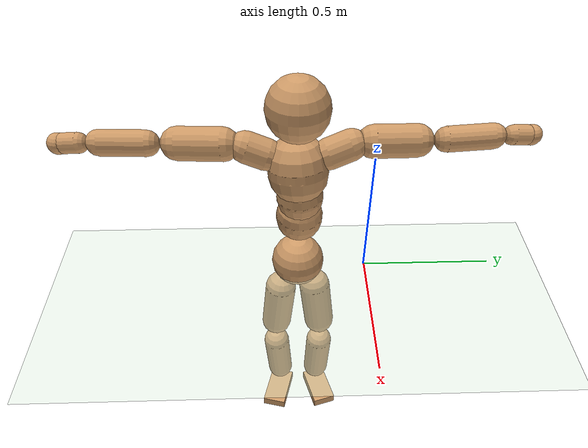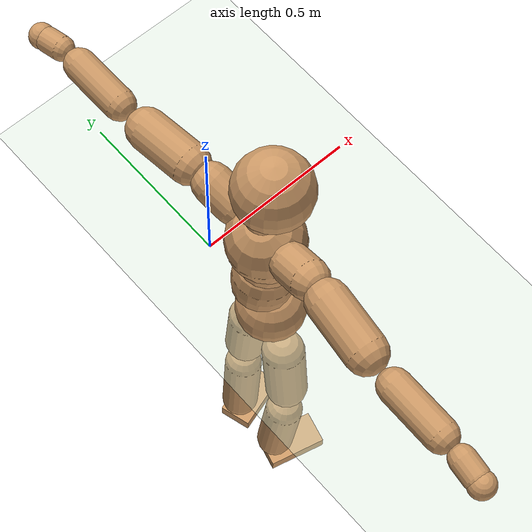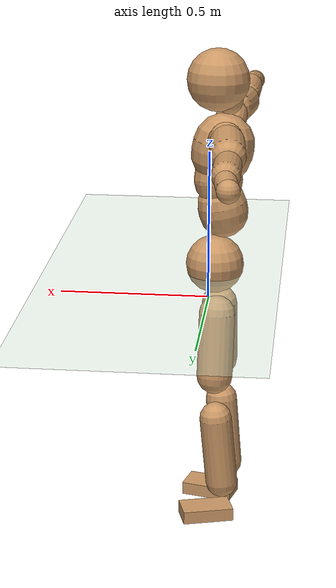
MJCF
<mujoco model="humanoid">
  <compiler coordinate="local"/>
  <default>
    <joint damping="0.0" armature="0.01" stiffness="0.0" limited="true"/>
    <geom conaffinity="1" condim="3" contype="7" margin="0.001" rgba="0.8 0.6 .4 1"/>
  </default>
  <asset>
    <texture type="skybox" builtin="gradient" rgb1=".4 .5 .6" rgb2="0 0 0" width="100" height="100"/>
    <texture builtin="flat" height="1278" mark="cross" markrgb="1 1 1" name="texgeom" random="0.01" rgb1="0.8 0.6 0.4" rgb2="0.8 0.6 0.4" type="cube" width="127"/>
    <texture builtin="checker" height="100" name="texplane" rgb1="0 0 0" rgb2="0.8 0.8 0.8" type="2d" width="100"/>
    <material name="MatPlane" reflectance="0.5" shininess="1" specular="1" texrepeat="60 60" texture="texplane"/>
    <material name="geom" texture="texgeom" texuniform="true"/>
  </asset>
  <worldbody>
    <light cutoff="100" diffuse="1 1 1" dir="-0 0 -1.3" directional="true" exponent="1" pos="0 0 1.3" specular=".1 .1 .1"/>
    <geom conaffinity="1" condim="3" name="floor" pos="0 0 0" rgba="0.8 0.9 0.8 1" size="100 100 .2" type="plane" material="MatPlane"/>
    <body name="Pelvis" pos="-0.0014 -0.2631 0.0317">
      <freejoint name="Pelvis"/>
      <geom type="sphere" contype="1" conaffinity="1" density="500" size="0.1017" pos="0.0000 0.0000 0.0000" name="Pelvis"/>
      <body name="L_Hip" pos="-0.0161 0.0612 -0.0856">
        <joint name="L_Hip_x" type="hinge" pos="0 0 0" axis="1 0 0" stiffness="800" damping="80" armature="0.02" range="-180.0000 180.0000"/>
        <joint name="L_Hip_y" type="hinge" pos="0 0 0" axis="0 1 0" stiffness="800" damping="80" armature="0.02" range="-180.0000 180.0000"/>
        <joint name="L_Hip_z" type="hinge" pos="0 0 0" axis="0 0 1" stiffness="800" damping="80" armature="0.02" range="-180.0000 180.0000"/>
        <geom type="capsule" contype="1" conaffinity="1" density="500" fromto="0.0015 0.0081 -0.0754 0.0060 0.0324 -0.3016" size="0.0632" name="L_Hip"/>
        <body name="L_Knee" pos="0.0075 0.0404 -0.3771">
          <joint name="L_Knee_x" type="hinge" pos="0 0 0" axis="1 0 0" stiffness="800" damping="80" armature="0.02" range="-180.0000 180.0000"/>
          <joint name="L_Knee_y" type="hinge" pos="0 0 0" axis="0 1 0" stiffness="800" damping="80" armature="0.02" range="-180.0000 180.0000"/>
          <joint name="L_Knee_z" type="hinge" pos="0 0 0" axis="0 0 1" stiffness="800" damping="80" armature="0.02" range="-180.0000 180.0000"/>
          <geom type="capsule" contype="1" conaffinity="1" density="500" fromto="-0.0079 -0.0032 -0.0841 -0.0316 -0.0128 -0.3366" size="0.057" name="L_Knee"/>
          <body name="L_Ankle" pos="-0.0395 -0.016 -0.4207">
            <joint name="L_Ankle_x" type="hinge" pos="0 0 0" axis="1 0 0" stiffness="800" damping="80" armature="0.02" range="-180.0000 180.0000"/>
            <joint name="L_Ankle_y" type="hinge" pos="0 0 0" axis="0 1 0" stiffness="800" damping="80" armature="0.02" range="-180.0000 180.0000"/>
            <joint name="L_Ankle_z" type="hinge" pos="0 0 0" axis="0 0 1" stiffness="800" damping="80" armature="0.02" range="-180.0000 180.0000"/>
            <geom type="box" contype="1" conaffinity="1" density="500" pos="0.0628 0.0182 -0.0300" size="0.0906 0.0512 0.023" quat="0.9900 0.0000 0.0000 0.1409" name="L_Ankle"/>
            <body name="L_Toe" pos="0.1255 0.0365 -0.0599">
              <joint name="L_Toe_x" type="hinge" pos="0 0 0" axis="1 0 0" stiffness="500" damping="50" armature="0.02" range="-180.0000 180.0000"/>
              <joint name="L_Toe_y" type="hinge" pos="0 0 0" axis="0 1 0" stiffness="500" damping="50" armature="0.02" range="-180.0000 180.0000"/>
              <joint name="L_Toe_z" type="hinge" pos="0 0 0" axis="0 0 1" stiffness="500" damping="50" armature="0.02" range="-180.0000 180.0000"/>
              <geom type="box" contype="1" conaffinity="1" density="500" pos="0.0000 0.0000 0.0292" size="0.0011 0.0026 0.0011" quat="0.9893 0.0000 0.0000 0.1459" name="L_Toe"/>
            </body>
          </body>
        </body>
      </body>
      <body name="R_Hip" pos="-0.0122 -0.0627 -0.0938">
        <joint name="R_Hip_x" type="hinge" pos="0 0 0" axis="1 0 0" stiffness="800" damping="80" armature="0.02" range="-180.0000 180.0000"/>
        <joint name="R_Hip_y" type="hinge" pos="0 0 0" axis="0 1 0" stiffness="800" damping="80" armature="0.02" range="-180.0000 180.0000"/>
        <joint name="R_Hip_z" type="hinge" pos="0 0 0" axis="0 0 1" stiffness="800" damping="80" armature="0.02" range="-180.0000 180.0000"/>
        <geom type="capsule" contype="1" conaffinity="1" density="500" fromto="-0.0008 -0.0082 -0.0753 -0.0031 -0.0328 -0.3011" size="0.0629" name="R_Hip"/>
        <body name="R_Knee" pos="-0.0039 -0.041 -0.3763">
          <joint name="R_Knee_x" type="hinge" pos="0 0 0" axis="1 0 0" stiffness="800" damping="80" armature="0.02" range="-180.0000 180.0000"/>
          <joint name="R_Knee_y" type="hinge" pos="0 0 0" axis="0 1 0" stiffness="800" damping="80" armature="0.02" range="-180.0000 180.0000"/>
          <joint name="R_Knee_z" type="hinge" pos="0 0 0" axis="0 0 1" stiffness="800" damping="80" armature="0.02" range="-180.0000 180.0000"/>
          <geom type="capsule" contype="1" conaffinity="1" density="500" fromto="-0.0072 0.0040 -0.0830 -0.0288 0.0162 -0.3319" size="0.0571" name="R_Knee"/>
          <body name="R_Ankle" pos="-0.036 0.0202 -0.4148">
            <joint name="R_Ankle_x" type="hinge" pos="0 0 0" axis="1 0 0" stiffness="800" damping="80" armature="0.02" range="-180.0000 180.0000"/>
            <joint name="R_Ankle_y" type="hinge" pos="0 0 0" axis="0 1 0" stiffness="800" damping="80" armature="0.02" range="-180.0000 180.0000"/>
            <joint name="R_Ankle_z" type="hinge" pos="0 0 0" axis="0 0 1" stiffness="800" damping="80" armature="0.02" range="-180.0000 180.0000"/>
            <geom type="box" contype="1" conaffinity="1" density="500" pos="0.0667 -0.0171 -0.0310" size="0.0919 0.0522 0.0227" quat="0.9922 0.0000 0.0000 -0.1248" name="R_Ankle"/>
            <body name="R_Toe" pos="0.1335 -0.0341 -0.0619">
              <joint name="R_Toe_x" type="hinge" pos="0 0 0" axis="1 0 0" stiffness="500" damping="50" armature="0.02" range="-180.0000 180.0000"/>
              <joint name="R_Toe_y" type="hinge" pos="0 0 0" axis="0 1 0" stiffness="500" damping="50" armature="0.02" range="-180.0000 180.0000"/>
              <joint name="R_Toe_z" type="hinge" pos="0 0 0" axis="0 0 1" stiffness="500" damping="50" armature="0.02" range="-180.0000 180.0000"/>
              <geom type="box" contype="1" conaffinity="1" density="500" pos="0.0000 0.0000 0.0310" size="0.0011 0.0026 0.0011" quat="0.9932 0.0000 0.0000 -0.1162" name="R_Toe"/>
            </body>
          </body>
        </body>
      </body>
      <body name="Torso" pos="-0.0403 0.0041 0.1313">
        <joint name="Torso_x" type="hinge" pos="0 0 0" axis="1 0 0" stiffness="1000" damping="100" armature="0.02" range="-180.0000 180.0000"/>
        <joint name="Torso_y" type="hinge" pos="0 0 0" axis="0 1 0" stiffness="1000" damping="100" armature="0.02" range="-180.0000 180.0000"/>
        <joint name="Torso_z" type="hinge" pos="0 0 0" axis="0 0 1" stiffness="1000" damping="100" armature="0.02" range="-180.0000 180.0000"/>
        <geom type="capsule" contype="1" conaffinity="1" density="500" fromto="0.0174 0.0031 0.0879 0.0116 0.0021 0.0586" size="0.086" name="Torso"/>
        <body name="Spine" pos="0.029 0.0052 0.1465">
          <joint name="Spine_x" type="hinge" pos="0 0 0" axis="1 0 0" stiffness="1000" damping="100" armature="0.02" range="-180.0000 180.0000"/>
          <joint name="Spine_y" type="hinge" pos="0 0 0" axis="0 1 0" stiffness="1000" damping="100" armature="0.02" range="-180.0000 180.0000"/>
          <joint name="Spine_z" type="hinge" pos="0 0 0" axis="0 0 1" stiffness="1000" damping="100" armature="0.02" range="-180.0000 180.0000"/>
          <geom type="capsule" contype="1" conaffinity="1" density="500" fromto="0.0026 -0.0016 0.0362 0.0018 -0.0011 0.0241" size="0.0842" name="Spine"/>
          <body name="Chest" pos="0.0044 -0.0027 0.0603">
            <joint name="Chest_x" type="hinge" pos="0 0 0" axis="1 0 0" stiffness="1000" damping="100" armature="0.02" range="-180.0000 180.0000"/>
            <joint name="Chest_y" type="hinge" pos="0 0 0" axis="0 1 0" stiffness="1000" damping="100" armature="0.02" range="-180.0000 180.0000"/>
            <joint name="Chest_z" type="hinge" pos="0 0 0" axis="0 0 1" stiffness="1000" damping="100" armature="0.02" range="-180.0000 180.0000"/>
            <geom type="capsule" contype="1" conaffinity="1" density="500" fromto="-0.0190 -0.0052 0.0934 -0.0126 -0.0035 0.0622" size="0.1068" name="Chest"/>
            <body name="Neck" pos="-0.0458 -0.014 0.2266">
              <joint name="Neck_x" type="hinge" pos="0 0 0" axis="1 0 0" stiffness="500" damping="50" armature="0.02" range="-180.0000 180.0000"/>
              <joint name="Neck_y" type="hinge" pos="0 0 0" axis="0 1 0" stiffness="500" damping="50" armature="0.02" range="-180.0000 180.0000"/>
              <joint name="Neck_z" type="hinge" pos="0 0 0" axis="0 0 1" stiffness="500" damping="50" armature="0.02" range="-180.0000 180.0000"/>
              <geom type="capsule" contype="1" conaffinity="1" density="500" fromto="0.0097 0.0019 0.0178 0.0386 0.0075 0.0711" size="0.0474" name="Neck"/>
              <body name="Head" pos="0.0483 0.0093 0.0889">
                <joint name="Head_x" type="hinge" pos="0 0 0" axis="1 0 0" stiffness="500" damping="50" armature="0.02" range="-180.0000 180.0000"/>
                <joint name="Head_y" type="hinge" pos="0 0 0" axis="0 1 0" stiffness="500" damping="50" armature="0.02" range="-180.0000 180.0000"/>
                <joint name="Head_z" type="hinge" pos="0 0 0" axis="0 0 1" stiffness="500" damping="50" armature="0.02" range="-180.0000 180.0000"/>
                <geom type="sphere" contype="1" conaffinity="1" density="500" size="0.1074" pos="0.0000 0.0000 0.0000" name="Head"/>
              </body>
            </body>
            <body name="L_Thorax" pos="-0.022 0.0743 0.1208">
              <joint name="L_Thorax_x" type="hinge" pos="0 0 0" axis="1 0 0" stiffness="500" damping="50" armature="0.02" range="-180.0000 180.0000"/>
              <joint name="L_Thorax_y" type="hinge" pos="0 0 0" axis="0 1 0" stiffness="500" damping="50" armature="0.02" range="-180.0000 180.0000"/>
              <joint name="L_Thorax_z" type="hinge" pos="0 0 0" axis="0 0 1" stiffness="500" damping="50" armature="0.02" range="-180.0000 180.0000"/>
              <geom type="capsule" contype="1" conaffinity="1" density="500" fromto="-0.0040 0.0256 0.0089 -0.0161 0.1025 0.0357" size="0.0555" name="L_Thorax"/>
              <body name="L_Shoulder" pos="-0.0202 0.1281 0.0447">
                <joint name="L_Shoulder_x" type="hinge" pos="0 0 0" axis="1 0 0" stiffness="500" damping="50" armature="0.02" range="-720.0000 720.0000"/>
                <joint name="L_Shoulder_y" type="hinge" pos="0 0 0" axis="0 1 0" stiffness="500" damping="50" armature="0.02" range="-720.0000 720.0000"/>
                <joint name="L_Shoulder_z" type="hinge" pos="0 0 0" axis="0 0 1" stiffness="500" damping="50" armature="0.02" range="-720.0000 720.0000"/>
                <geom type="capsule" contype="1" conaffinity="1" density="500" fromto="-0.0046 0.0506 -0.0027 -0.0183 0.2026 -0.0110" size="0.0578" name="L_Shoulder"/>
                <body name="L_Elbow" pos="-0.0229 0.2532 -0.0137">
                  <joint name="L_Elbow_x" type="hinge" pos="0 0 0" axis="1 0 0" stiffness="500" damping="50" armature="0.02" range="-720.0000 720.0000"/>
                  <joint name="L_Elbow_y" type="hinge" pos="0 0 0" axis="0 1 0" stiffness="500" damping="50" armature="0.02" range="-720.0000 720.0000"/>
                  <joint name="L_Elbow_z" type="hinge" pos="0 0 0" axis="0 0 1" stiffness="500" damping="50" armature="0.02" range="-720.0000 720.0000"/>
                  <geom type="capsule" contype="1" conaffinity="1" density="500" fromto="-0.0013 0.0529 0.0024 -0.0052 0.2116 0.0096" size="0.0447" name="L_Elbow"/>
                  <body name="L_Wrist" pos="-0.0065 0.2645 0.012">
                    <joint name="L_Wrist_x" type="hinge" pos="0 0 0" axis="1 0 0" stiffness="300" damping="30" armature="0.02" range="-180.0000 180.0000"/>
                    <joint name="L_Wrist_y" type="hinge" pos="0 0 0" axis="0 1 0" stiffness="300" damping="30" armature="0.02" range="-180.0000 180.0000"/>
                    <joint name="L_Wrist_z" type="hinge" pos="0 0 0" axis="0 0 1" stiffness="300" damping="30" armature="0.02" range="-180.0000 180.0000"/>
                    <geom type="capsule" contype="1" conaffinity="1" density="500" fromto="-0.0031 0.0176 -0.0021 -0.0125 0.0705 -0.0085" size="0.0351" name="L_Wrist"/>
                    <body name="L_Hand" pos="-0.0156 0.0881 -0.0107">
                      <joint name="L_Hand_x" type="hinge" pos="0 0 0" axis="1 0 0" stiffness="300" damping="30" armature="0.02" range="-180.0000 180.0000"/>
                      <joint name="L_Hand_y" type="hinge" pos="0 0 0" axis="0 1 0" stiffness="300" damping="30" armature="0.02" range="-180.0000 180.0000"/>
                      <joint name="L_Hand_z" type="hinge" pos="0 0 0" axis="0 0 1" stiffness="300" damping="30" armature="0.02" range="-180.0000 180.0000"/>
                      <geom type="sphere" contype="1" conaffinity="1" density="500" size="0.0362" pos="0.0000 0.0000 0.0000" name="L_Hand"/>
                    </body>
                  </body>
                </body>
              </body>
            </body>
            <body name="R_Thorax" pos="-0.027 -0.0862 0.1194">
              <joint name="R_Thorax_x" type="hinge" pos="0 0 0" axis="1 0 0" stiffness="500" damping="50" armature="0.02" range="-180.0000 180.0000"/>
              <joint name="R_Thorax_y" type="hinge" pos="0 0 0" axis="0 1 0" stiffness="500" damping="50" armature="0.02" range="-180.0000 180.0000"/>
              <joint name="R_Thorax_z" type="hinge" pos="0 0 0" axis="0 0 1" stiffness="500" damping="50" armature="0.02" range="-180.0000 180.0000"/>
              <geom type="capsule" contype="1" conaffinity="1" density="500" fromto="-0.0019 -0.0237 0.0094 -0.0074 -0.0947 0.0374" size="0.0555" name="R_Thorax"/>
              <body name="R_Shoulder" pos="-0.0093 -0.1184 0.0468">
                <joint name="R_Shoulder_x" type="hinge" pos="0 0 0" axis="1 0 0" stiffness="500" damping="50" armature="0.02" range="-720.0000 720.0000"/>
                <joint name="R_Shoulder_y" type="hinge" pos="0 0 0" axis="0 1 0" stiffness="500" damping="50" armature="0.02" range="-720.0000 720.0000"/>
                <joint name="R_Shoulder_z" type="hinge" pos="0 0 0" axis="0 0 1" stiffness="500" damping="50" armature="0.02" range="-720.0000 720.0000"/>
                <geom type="capsule" contype="1" conaffinity="1" density="500" fromto="-0.0064 -0.0519 -0.0023 -0.0255 -0.2075 -0.0092" size="0.0586" name="R_Shoulder"/>
                <body name="R_Elbow" pos="-0.0318 -0.2594 -0.0115">
                  <joint name="R_Elbow_x" type="hinge" pos="0 0 0" axis="1 0 0" stiffness="500" damping="50" armature="0.02" range="-720.0000 720.0000"/>
                  <joint name="R_Elbow_y" type="hinge" pos="0 0 0" axis="0 1 0" stiffness="500" damping="50" armature="0.02" range="-720.0000 720.0000"/>
                  <joint name="R_Elbow_z" type="hinge" pos="0 0 0" axis="0 0 1" stiffness="500" damping="50" armature="0.02" range="-720.0000 720.0000"/>
                  <geom type="capsule" contype="1" conaffinity="1" density="500" fromto="-0.0011 -0.0534 0.0009 -0.0045 -0.2135 0.0037" size="0.0455" name="R_Elbow"/>
                  <body name="R_Wrist" pos="-0.0057 -0.2669 0.0046">
                    <joint name="R_Wrist_x" type="hinge" pos="0 0 0" axis="1 0 0" stiffness="300" damping="30" armature="0.02" range="-180.0000 180.0000"/>
                    <joint name="R_Wrist_y" type="hinge" pos="0 0 0" axis="0 1 0" stiffness="300" damping="30" armature="0.02" range="-180.0000 180.0000"/>
                    <joint name="R_Wrist_z" type="hinge" pos="0 0 0" axis="0 0 1" stiffness="300" damping="30" armature="0.02" range="-180.0000 180.0000"/>
                    <geom type="capsule" contype="1" conaffinity="1" density="500" fromto="-0.0020 -0.0182 -0.0017 -0.0079 -0.0726 -0.0070" size="0.0359" name="R_Wrist"/>
                    <body name="R_Hand" pos="-0.0099 -0.0908 -0.0087">
                      <joint name="R_Hand_x" type="hinge" pos="0 0 0" axis="1 0 0" stiffness="300" damping="30" armature="0.02" range="-180.0000 180.0000"/>
                      <joint name="R_Hand_y" type="hinge" pos="0 0 0" axis="0 1 0" stiffness="300" damping="30" armature="0.02" range="-180.0000 180.0000"/>
                      <joint name="R_Hand_z" type="hinge" pos="0 0 0" axis="0 0 1" stiffness="300" damping="30" armature="0.02" range="-180.0000 180.0000"/>
                      <geom type="sphere" contype="1" conaffinity="1" density="500" size="0.0370" pos="0.0000 0.0000 0.0000" name="R_Hand"/>
                    </body>
                  </body>
                </body>
              </body>
            </body>
          </body>
        </body>
      </body>
    </body>
  </worldbody>
  <actuator>
    <motor name="L_Hip_x" joint="L_Hip_x" gear="500"/>
    <motor name="L_Hip_y" joint="L_Hip_y" gear="500"/>
    <motor name="L_Hip_z" joint="L_Hip_z" gear="500"/>
    <motor name="L_Knee_x" joint="L_Knee_x" gear="500"/>
    <motor name="L_Knee_y" joint="L_Knee_y" gear="500"/>
    <motor name="L_Knee_z" joint="L_Knee_z" gear="500"/>
    <motor name="L_Ankle_x" joint="L_Ankle_x" gear="500"/>
    <motor name="L_Ankle_y" joint="L_Ankle_y" gear="500"/>
    <motor name="L_Ankle_z" joint="L_Ankle_z" gear="500"/>
    <motor name="L_Toe_x" joint="L_Toe_x" gear="500"/>
    <motor name="L_Toe_y" joint="L_Toe_y" gear="500"/>
    <motor name="L_Toe_z" joint="L_Toe_z" gear="500"/>
    <motor name="R_Hip_x" joint="R_Hip_x" gear="500"/>
    <motor name="R_Hip_y" joint="R_Hip_y" gear="500"/>
    <motor name="R_Hip_z" joint="R_Hip_z" gear="500"/>
    <motor name="R_Knee_x" joint="R_Knee_x" gear="500"/>
    <motor name="R_Knee_y" joint="R_Knee_y" gear="500"/>
    <motor name="R_Knee_z" joint="R_Knee_z" gear="500"/>
    <motor name="R_Ankle_x" joint="R_Ankle_x" gear="500"/>
    <motor name="R_Ankle_y" joint="R_Ankle_y" gear="500"/>
    <motor name="R_Ankle_z" joint="R_Ankle_z" gear="500"/>
    <motor name="R_Toe_x" joint="R_Toe_x" gear="500"/>
    <motor name="R_Toe_y" joint="R_Toe_y" gear="500"/>
    <motor name="R_Toe_z" joint="R_Toe_z" gear="500"/>
    <motor name="Torso_x" joint="Torso_x" gear="500"/>
    <motor name="Torso_y" joint="Torso_y" gear="500"/>
    <motor name="Torso_z" joint="Torso_z" gear="500"/>
    <motor name="Spine_x" joint="Spine_x" gear="500"/>
    <motor name="Spine_y" joint="Spine_y" gear="500"/>
    <motor name="Spine_z" joint="Spine_z" gear="500"/>
    <motor name="Chest_x" joint="Chest_x" gear="500"/>
    <motor name="Chest_y" joint="Chest_y" gear="500"/>
    <motor name="Chest_z" joint="Chest_z" gear="500"/>
    <motor name="Neck_x" joint="Neck_x" gear="500"/>
    <motor name="Neck_y" joint="Neck_y" gear="500"/>
    <motor name="Neck_z" joint="Neck_z" gear="500"/>
    <motor name="Head_x" joint="Head_x" gear="500"/>
    <motor name="Head_y" joint="Head_y" gear="500"/>
    <motor name="Head_z" joint="Head_z" gear="500"/>
    <motor name="L_Thorax_x" joint="L_Thorax_x" gear="500"/>
    <motor name="L_Thorax_y" joint="L_Thorax_y" gear="500"/>
    <motor name="L_Thorax_z" joint="L_Thorax_z" gear="500"/>
    <motor name="L_Shoulder_x" joint="L_Shoulder_x" gear="500"/>
    <motor name="L_Shoulder_y" joint="L_Shoulder_y" gear="500"/>
    <motor name="L_Shoulder_z" joint="L_Shoulder_z" gear="500"/>
    <motor name="L_Elbow_x" joint="L_Elbow_x" gear="500"/>
    <motor name="L_Elbow_y" joint="L_Elbow_y" gear="500"/>
    <motor name="L_Elbow_z" joint="L_Elbow_z" gear="500"/>
    <motor name="L_Wrist_x" joint="L_Wrist_x" gear="500"/>
    <motor name="L_Wrist_y" joint="L_Wrist_y" gear="500"/>
    <motor name="L_Wrist_z" joint="L_Wrist_z" gear="500"/>
    <motor name="L_Hand_x" joint="L_Hand_x" gear="500"/>
    <motor name="L_Hand_y" joint="L_Hand_y" gear="500"/>
    <motor name="L_Hand_z" joint="L_Hand_z" gear="500"/>
    <motor name="R_Thorax_x" joint="R_Thorax_x" gear="500"/>
    <motor name="R_Thorax_y" joint="R_Thorax_y" gear="500"/>
    <motor name="R_Thorax_z" joint="R_Thorax_z" gear="500"/>
    <motor name="R_Shoulder_x" joint="R_Shoulder_x" gear="500"/>
    <motor name="R_Shoulder_y" joint="R_Shoulder_y" gear="500"/>
    <motor name="R_Shoulder_z" joint="R_Shoulder_z" gear="500"/>
    <motor name="R_Elbow_x" joint="R_Elbow_x" gear="500"/>
    <motor name="R_Elbow_y" joint="R_Elbow_y" gear="500"/>
    <motor name="R_Elbow_z" joint="R_Elbow_z" gear="500"/>
    <motor name="R_Wrist_x" joint="R_Wrist_x" gear="500"/>
    <motor name="R_Wrist_y" joint="R_Wrist_y" gear="500"/>
    <motor name="R_Wrist_z" joint="R_Wrist_z" gear="500"/>
    <motor name="R_Hand_x" joint="R_Hand_x" gear="500"/>
    <motor name="R_Hand_y" joint="R_Hand_y" gear="500"/>
    <motor name="R_Hand_z" joint="R_Hand_z" gear="500"/>
  </actuator>
  <contact>
    <exclude body1="Torso" body2="Chest"/>
    <exclude body1="Head" body2="Chest"/>
    <exclude body1="R_Knee" body2="R_Toe"/>
    <exclude body1="R_Knee" body2="L_Ankle"/>
    <exclude body1="R_Knee" body2="L_Toe"/>
    <exclude body1="L_Knee" body2="L_Toe"/>
    <exclude body1="L_Knee" body2="R_Ankle"/>
    <exclude body1="L_Knee" body2="R_Toe"/>
    <exclude body1="L_Shoulder" body2="Chest"/>
    <exclude body1="R_Shoulder" body2="Chest"/>
  </contact>
  <sensor/>
  <size njmax="700" nconmax="700"/>
</mujoco>
